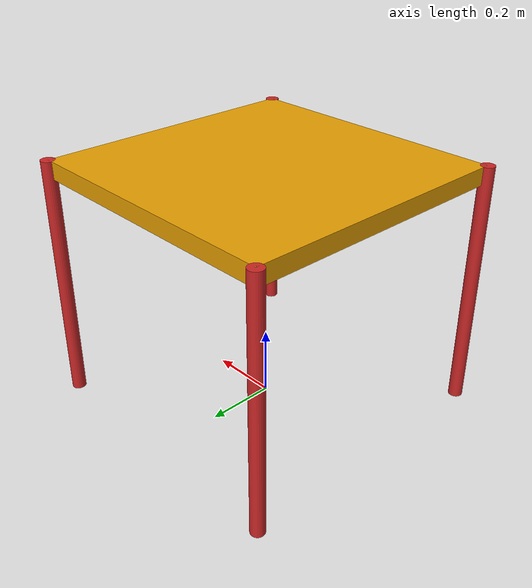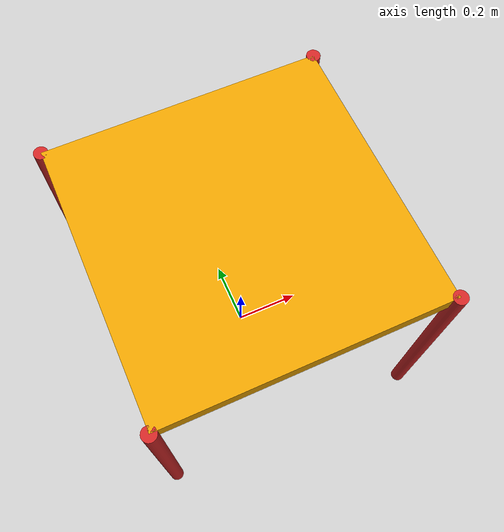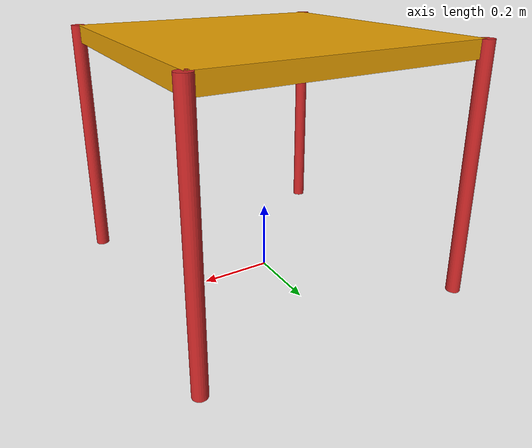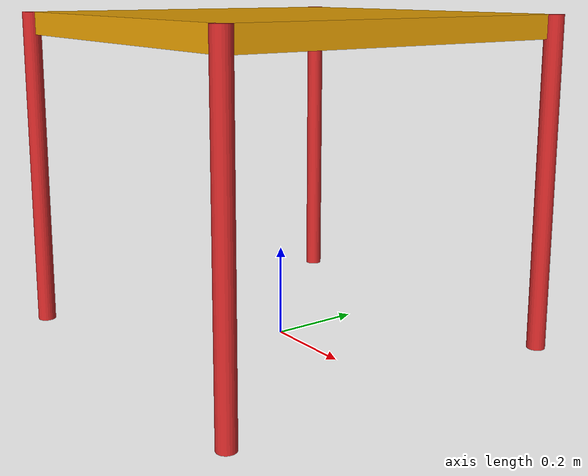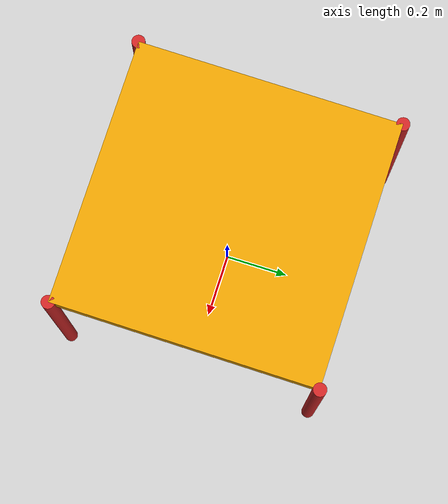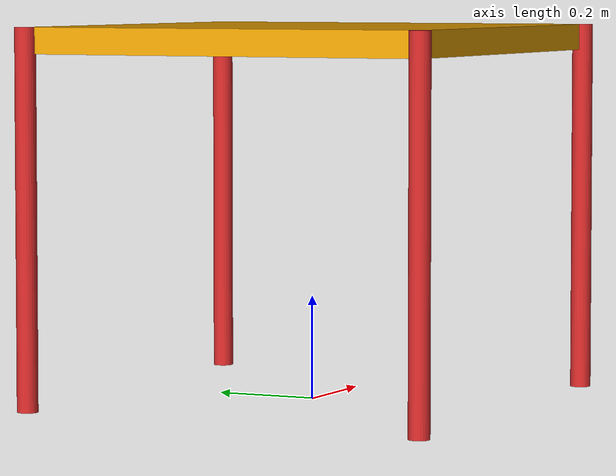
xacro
<?xml version="1.0"?>
<robot xmlns:xacro="http://ros.org/wiki/xacro" name="table">

  <xacro:include filename="$(find mobipick_gazebo)/urdf/include/table.urdf.xacro" />
  <xacro:table height="0.72" width="0.80" depth="0.80" leg_radius="0.02" table_top_thickness="0.05" x="0.0" y="0.0" z="0.0" />
</robot>

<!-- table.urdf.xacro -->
<robot xmlns:xacro="http://ros.org/wiki/xacro">

  <xacro:macro name="table" params="height:=0.72 width:=0.80 depth:=0.80 leg_radius:=0.02 table_top_thickness:=0.05 x:=0.0 y:=0.0 z:=0.0">
    <link name="table_top_link">
      <inertial>
        <mass value="1.0" />
        <origin xyz="${x} ${y} ${z + height - table_top_thickness/2}" />
        <inertia ixx="1" ixy="0"  ixz="0"
                 iyy="1" iyz="0"
                 izz="1" />
      </inertial>
      <visual>
        <origin xyz="${x} ${y} ${z + height - table_top_thickness/2}" />
        <geometry>
          <box size="${width} ${depth} ${table_top_thickness}" />
        </geometry>
      </visual>
      <collision>
        <origin xyz="${x} ${y} ${z + height - table_top_thickness/2}" />
        <geometry>
          <box size="${width} ${depth} ${table_top_thickness}" />
        </geometry>
      </collision>
    </link>
    <gazebo reference="table_top_link">
      <mu1>1.0</mu1>
      <mu2>1.0</mu2>
      <kp>1000000.0</kp>
      <kd>1.0</kd>
    </gazebo>

    <joint name="leg1_joint" type="fixed" >
      <parent link="table_top_link" />
      <origin xyz="${x + width/2} ${y + depth/2} ${z + height}" rpy="0 0 0" />
      <child link="leg1_link" />
    </joint>
    <link name="leg1_link">
      <inertial>
        <mass value="1.0" />
        <origin xyz="0 0 ${-height/2}" />
        <inertia ixx="0.1" ixy="0"  ixz="0"
                 iyy="0.1" iyz="0"
                 izz="0.01" />
      </inertial>
      <visual>
        <origin xyz="0.0 0.0 ${-height/2}" rpy="0 0 0" />
        <geometry>
          <cylinder radius="${leg_radius}" length="${height}" />
        </geometry>
      </visual>
      <collision>
        <origin xyz="0.0 0.0 ${-height/2}" rpy="0.0 0.0 0.0" />
        <geometry>
          <cylinder radius="${leg_radius}" length="${height}" />
        </geometry>
      </collision>
    </link>
    <gazebo reference="leg1_link">
      <material>Gazebo/Red</material>
    </gazebo>

    <joint name="leg2_joint" type="fixed" >
      <parent link="table_top_link" />
      <origin xyz="${x - width/2} ${y + depth/2} ${z + height}" rpy="0 0 0" />
      <child link="leg2_link" />
    </joint>
    <link name="leg2_link">
      <inertial>
        <mass value="1.0" />
        <origin xyz="0 0 ${-height/2}" />
        <inertia ixx="0.1" ixy="0"  ixz="0"
                 iyy="0.1" iyz="0"
                 izz="0.01" />
      </inertial>
      <visual>
        <origin xyz="0.0 0.0 ${-height/2}" rpy="0 0 0" />
        <geometry>
          <cylinder radius="${leg_radius}" length="${height}" />
        </geometry>
      </visual>
      <collision>
        <origin xyz="0.0 0.0 ${-height/2}" rpy="0.0 0.0 0.0" />
        <geometry>
          <cylinder radius="${leg_radius}" length="${height}" />
        </geometry>
      </collision>
    </link>
    <gazebo reference="leg2_link">
      <material>Gazebo/Red</material>
    </gazebo>

    <joint name="leg3_joint" type="fixed" >
      <parent link="table_top_link" />
      <origin xyz="${x + width/2} ${y - depth/2} ${z + height}" rpy="0 0 0" />
      <child link="leg3_link" />
    </joint>
    <link name="leg3_link">
      <inertial>
        <mass value="1.0" />
        <origin xyz="0 0 ${-height/2}" />
        <inertia ixx="0.1" ixy="0"  ixz="0"
                 iyy="0.1" iyz="0"
                 izz="0.01" />
      </inertial>
      <visual>
        <origin xyz="0.0 0.0 ${-height/2}" rpy="0 0 0" />
        <geometry>
          <cylinder radius="${leg_radius}" length="${height}" />
        </geometry>
      </visual>
      <collision>
        <origin xyz="0.0 0.0 ${-height/2}" rpy="0.0 0.0 0.0" />
        <geometry>
          <cylinder radius="${leg_radius}" length="${height}" />
        </geometry>
      </collision>
    </link>
    <gazebo reference="leg3_link">
      <material>Gazebo/Red</material>
    </gazebo>

    <joint name="leg4_joint" type="fixed" >
      <parent link="table_top_link" />
      <origin xyz="${x - width/2} ${y - depth/2} ${z + height}" rpy="0 0 0" />
      <child link="leg4_link" />
    </joint>
    <link name="leg4_link">
      <inertial>
        <mass value="1.0" />
        <origin xyz="0 0 ${-height/2}" />
        <inertia ixx="0.1" ixy="0"  ixz="0"
                 iyy="0.1" iyz="0"
                 izz="0.01" />
      </inertial>
      <visual>
        <origin xyz="0.0 0.0 ${-height/2}" rpy="0 0 0" />
        <geometry>
          <cylinder radius="${leg_radius}" length="${height}" />
        </geometry>
      </visual>
      <collision>
        <origin xyz="0.0 0.0 ${-height/2}" rpy="0.0 0.0 0.0" />
        <geometry>
          <cylinder radius="${leg_radius}" length="${height}" />
        </geometry>
      </collision>
    </link>
    <gazebo reference="leg4_link">
      <material>Gazebo/Red</material>
    </gazebo>
    <gazebo>
      <static>true</static>
      <canonicalBody>table_top_link</canonicalBody>
    </gazebo>
  </xacro:macro>
</robot>
